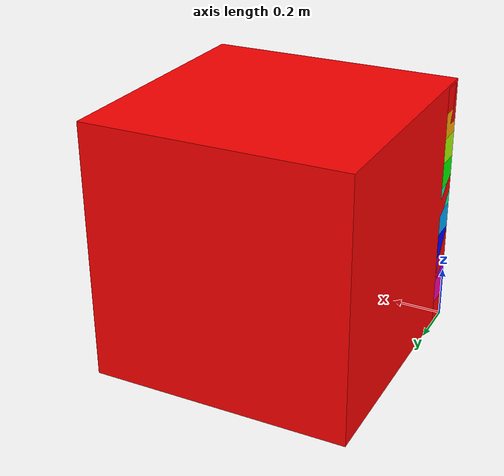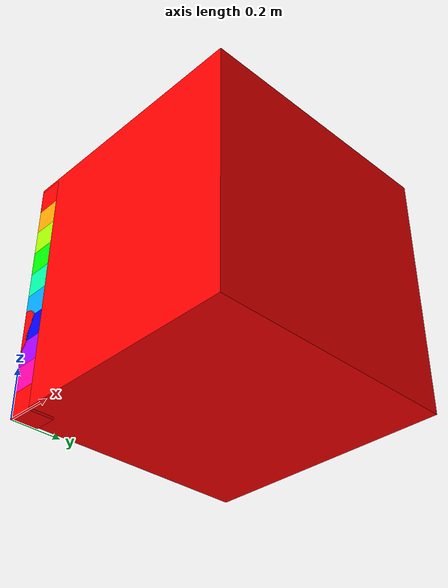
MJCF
<mujoco model="random_box_terrain">
    <compiler angle="degree" coordinate="local"/>
    <option timestep="0.01" gravity="0 0 -9.81" integrator="RK4"/>

    <worldbody>
        <body name="ruler" pos="0 0 0">
            <freejoint name="ruler"/>
            <geom type="box" name="geom_9" pos="0.05 0.05 0.95" size="0.05 0.05 0.05" euler="0 0 0" rgba="1 0.0 0.0 1"/>
            <geom type="box" name="geom_8" pos="0.05 0.05 0.85" size="0.05 0.05 0.05" euler="0 0 0" rgba="1 0.6666666666666666 0.0 1"/>
            <geom type="box" name="geom_7" pos="0.05 0.05 0.75" size="0.05 0.05 0.05" euler="0 0 0" rgba="0.6666666666666667 1 0.0 1"/>
            <geom type="box" name="geom_6" pos="0.05 0.05 0.65" size="0.05 0.05 0.05" euler="0 0 0" rgba="0.0 1 0.0 1"/>
            <geom type="box" name="geom_5" pos="0.05 0.05 0.55" size="0.05 0.05 0.05" euler="0 0 0" rgba="0.0 1 0.6666666666666666 1"/>
            <geom type="box" name="geom_4" pos="0.05 0.05 0.45" size="0.05 0.05 0.05" euler="0 0 0" rgba="0.0 0.6666666666666665 1 1"/>
            <geom type="box" name="geom_3" pos="0.05 0.05 0.35" size="0.05 0.05 0.05" euler="0 0 0" rgba="0.0 0.0 1 1"/>
            <geom type="box" name="geom_2" pos="0.05 0.05 0.25" size="0.05 0.05 0.05" euler="0 0 0" rgba="0.666666666666667 0.0 1 1"/>
            <geom type="box" name="geom_1" pos="0.05 0.05 0.15" size="0.05 0.05 0.05" euler="0 0 0" rgba="1 0.0 0.6666666666666672 1"/>
            <geom type="box" name="geom_0" pos="0.05 0.05 0.05" size="0.05 0.05 0.05" euler="0 0 0" rgba="1 0.0 2.220446049250313e-16 1"/>
        </body>

        <body name="big_box" pos="0 0 0" euler="0 0 0">
            <freejoint name="big_box"/>
            <geom type="box" size="0.5 0.5 0.5" pos="0.5 0.5 0.51" rgba="1 0.0 0.0 1"/>
        </body>
    </worldbody>

    <actuator>
        <!-- 在这里你可以定义一些控制器 -->
    </actuator>

</mujoco>
